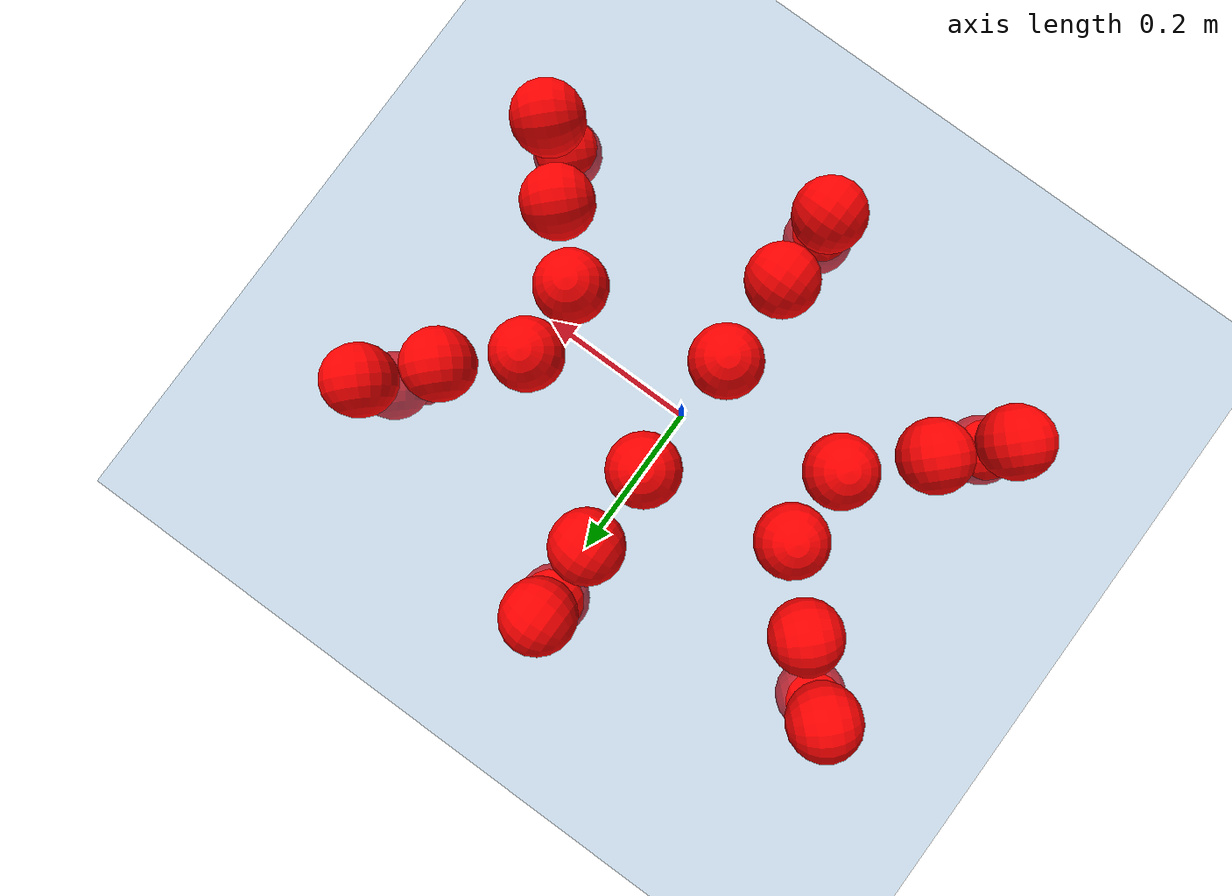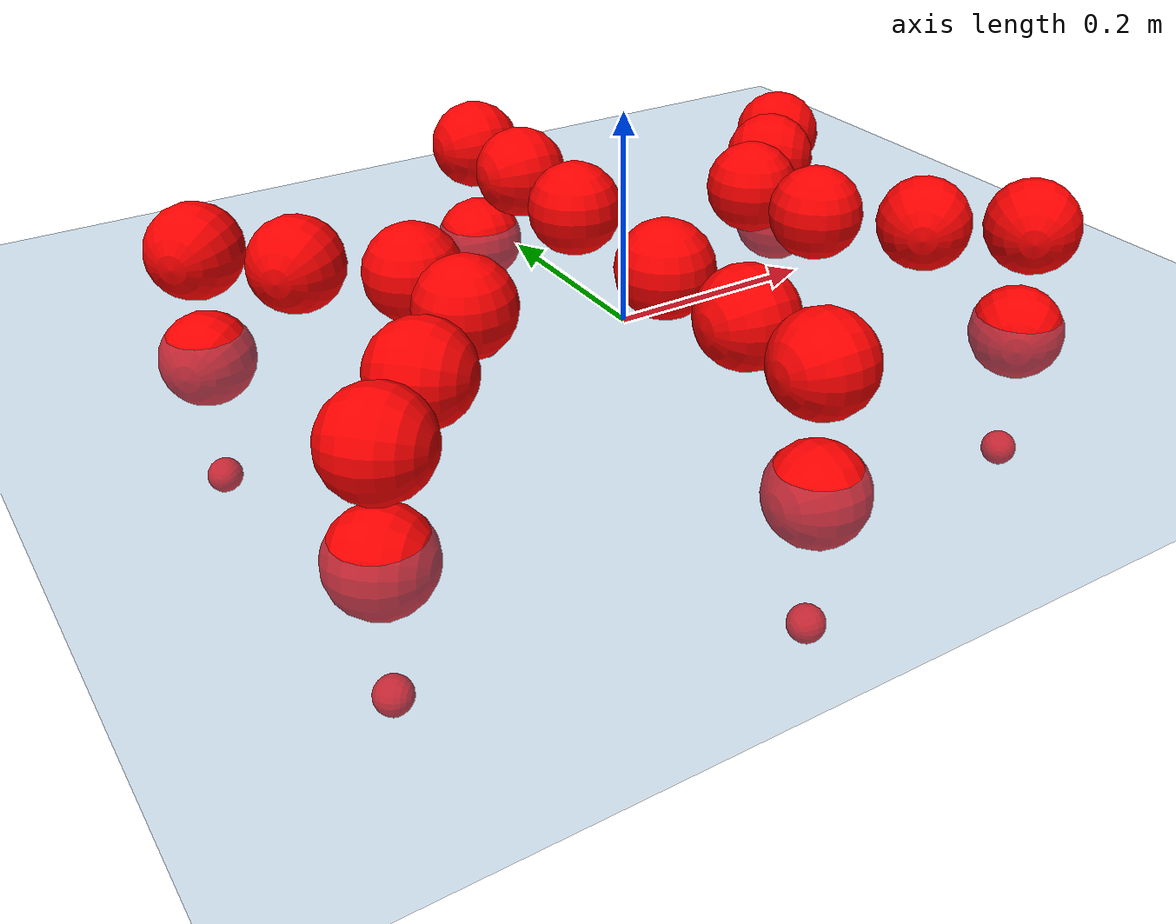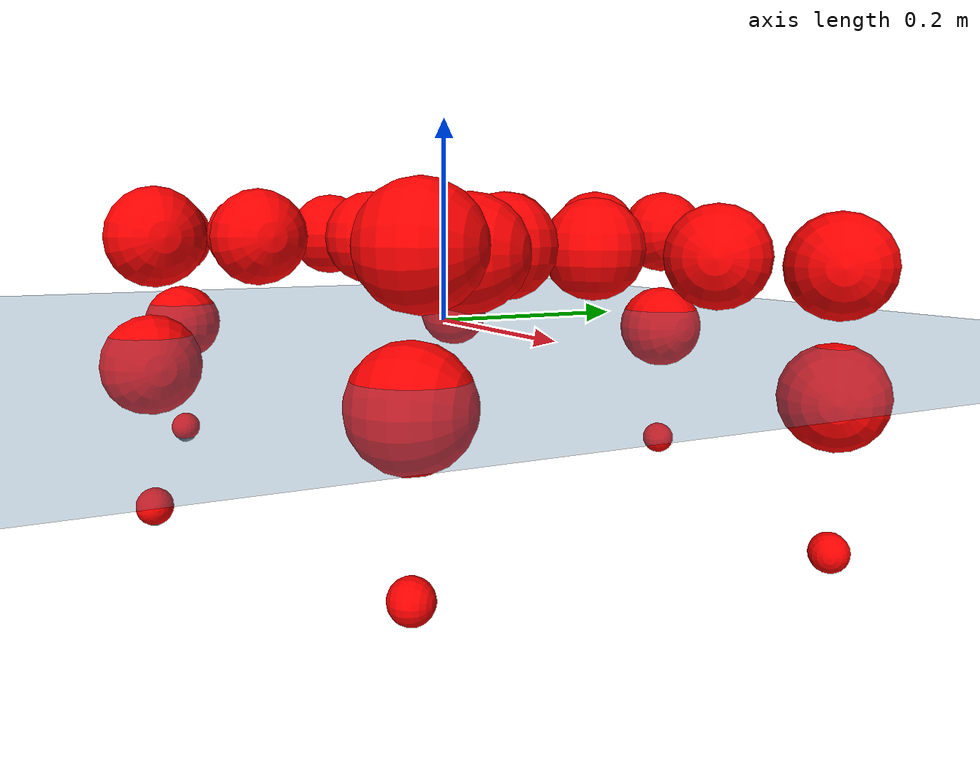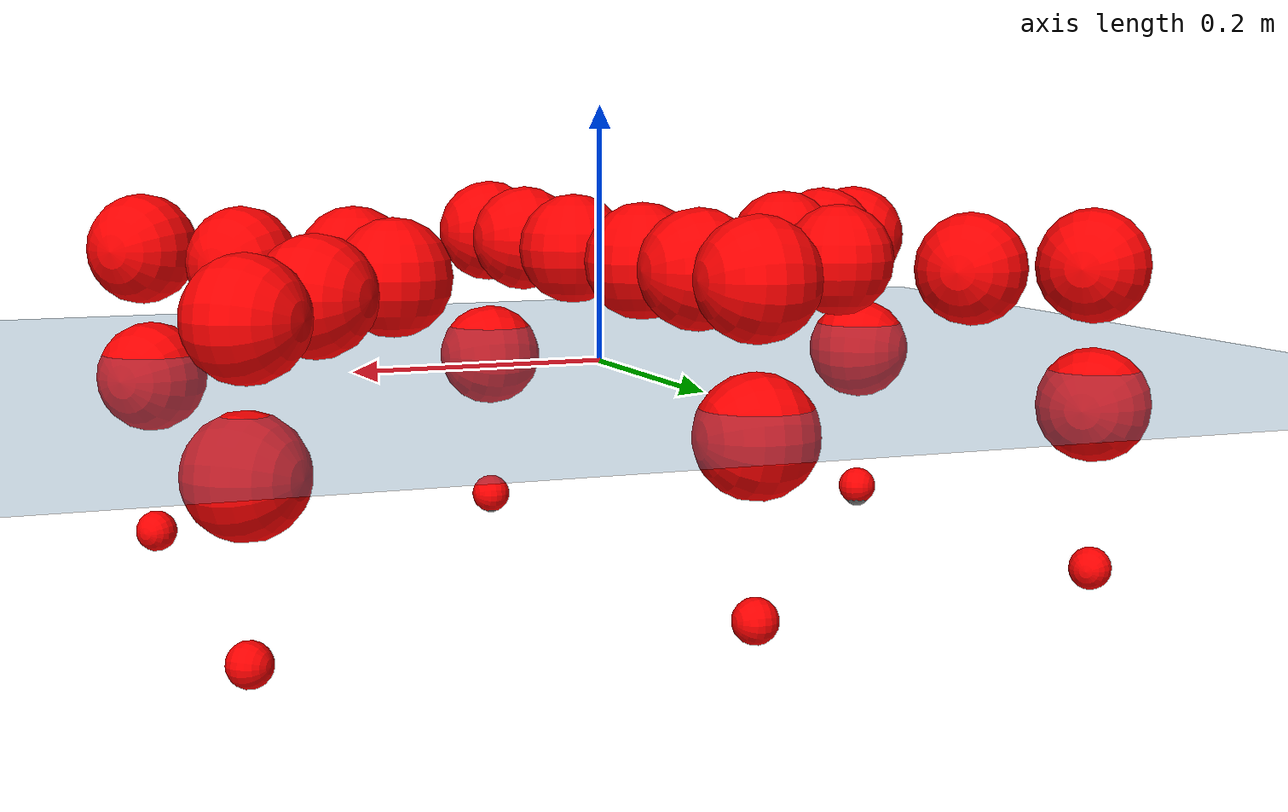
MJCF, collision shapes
<mujoco model="Golem">
  <compiler angle="radian" assetdir="assets" balanceinertia="true" inertiafromgeom="false"/>

  <option timestep="0.005" density="1.2" viscosity="2e-05"/>

  <size nkey="1"/>

  <visual>
    <quality shadowsize="8192"/>
    <map shadowclip="0.5"/>
  </visual>

  <default>
    <default class="/">
      <joint armature="0.01" damping="0.01" frictionloss="0.01"/>
      <geom contype="0" conaffinity="0" group="1" solref="-1000 -80"/>
      <site size="0.01 0.005 0.005" group="5"/>
      <general forcelimited="true" biastype="affine" gainprm="25" biasprm="0 -25 -0.5"/>
      <default class="visual">
        <geom type="mesh" group="2"/>
      </default>
      <default class="collision">
        <geom group="3"/>
      </default>
      <default class="foot">
        <geom size="0.01 0 0" condim="6" group="4" priority="1" solimp="0.015 1 0.01"/>
      </default>
      <default class="reward_collision_sphere">
        <geom group="5" rgba="1 0 0 1"/>
      </default>
    </default>
  </default>

  <asset>
    <texture type="skybox" colorspace="auto" name="//unnamed_texture_0" builtin="gradient" rgb1="0.95 0.95 0.95" rgb2="0.95 0.95 0.95" width="100" height="600"/>
    <texture type="2d" colorspace="auto" name="texplane" builtin="checker" rgb1="0.345 0.575 0.748" rgb2="0.345 0.575 0.748" markrgb="1 1 1" width="512" height="512"/>
    <material name="MatPlane" class="/" texture="texplane" texuniform="true" texrepeat="2 2" specular="0.9"/>
    <mesh name="body" class="/" file="body.stl" scale="0.001 0.001 0.001"/>
    <mesh name="coxa" class="/" file="coxa.stl" scale="0.001 0.001 0.001"/>
    <mesh name="femur" class="/" file="femur.stl" scale="0.001 0.001 0.001"/>
    <mesh name="tibia" class="/" file="tibia.stl" scale="0.001 0.001 0.001"/>
    <mesh name="tarsus" class="/" file="tarsus.stl" scale="0.001 0.001 0.001"/>
  </asset>

  <worldbody>
    <geom name="floor" class="/" size="100 100 0.125" type="plane" group="0" material="MatPlane"/>
    <light name="toplight_shadow" class="/" pos="0 0 5" dir="0.0990148 0.0990148 -0.990148" type="directional" ambient="0.04 0.04 0.04" diffuse="0.55 0.55 0.55" specular="0.12 0.12 0.12"/>
    <light name="toplight_fill" class="/" pos="0 0 5" dir="0.0990148 0.0990148 -0.990148" type="directional" castshadow="false" ambient="0.04 0.04 0.04" diffuse="0.3 0.3 0.3" specular="0.08 0.08 0.08"/>
    <body name="trunk" pos="0.000159445 -0.0021789 0.00231747" quat="0.999998 3.38667e-05 0.00114678 0.00173407">
      <inertial pos="0.000339829 -0.000227479 -0.00416951" quat="0.999988 -0.00239078 0.00132721 -0.00399506" mass="5.42964" diaginertia="0.0232515 0.00505983 0.0331675"/>
      <joint name="//unnamed_joint_0" type="free"/>
      <geom name="//unnamed_geom_1" class="/" pos="0 0 0.0813621" quat="1 0 0 0" type="mesh" rgba="0.9 0.9 0.9 1" mesh="body"/>
      <site name="imu" class="/" pos="0.146967 -0.0225786 0.090561" size="0.0111027"/>
      <camera name="track" class="/" pos="0 -1.73972 0" quat="0.707107 0.707107 0 0" mode="trackcom"/>
      <camera name="ego_camera" class="/" pos="0.154658 0 0.127128" quat="-0.5 -0.5 0.5 0.5"/>
      <body name="coxa_RR" pos="-0.21059 -0.0730257 0.0809757" quat="0.381462 0.00261018 0.00247468 -0.924378">
        <inertial pos="-0.00348106 0.00107333 0.00141297" quat="1 0.000256165 0.000154964 -0.000357879" mass="0.251852" diaginertia="0.0230044 0.00454717 0.0292685"/>
        <joint name="coxa_joint_RR" class="/" pos="0 0 0" axis="0.00126171 -0.000644363 -0.999999" range="-3.13893 3.1154" armature="0.0126019" damping="0.00237269" frictionloss="0.011387"/>
        <geom name="//unnamed_geom_2" class="/" type="mesh" rgba="0.2 0.2 0.2 1" mesh="coxa"/>
        <geom name="//unnamed_geom_3" class="reward_collision_sphere" size="0.0444109" pos="-0.0356904 0 0"/>
        <body name="femur_RR" pos="0.072836 0.00053047 -0.0011469" quat="0.497761 -0.501723 0.499267 0.501238">
          <inertial pos="0.000304257 -0.00702965 -0.00110491" quat="0.999943 -0.0030459 -0.0101089 -0.0014663" mass="0.298913" diaginertia="0.0248343 0.00533042 0.0356126"/>
          <joint name="femur_joint_RR" class="/" pos="0 0 0" axis="-0.00932369 -0.00171642 -0.999955" stiffness="0.00378422" range="-3.12007 3.12007" armature="0.00868705" damping="0.01677" frictionloss="0.0111537"/>
          <geom name="//unnamed_geom_4" class="/" type="mesh" rgba="0.9 0.9 0.9 1" mesh="femur"/>
          <geom name="//unnamed_geom_5" class="reward_collision_sphere" size="0.0444109"/>
          <body name="tibia_RR" pos="0.0024084 -0.094547 0.000757694" quat="2.67342e-05 1 0.000508488 0.000329944">
            <inertial pos="0.000204229 -0.0061659 0.00206253" quat="0.999999 -3.4481e-05 0.00142032 3.7675e-05" mass="0.279469" diaginertia="0.0242278 0.00511832 0.0335934"/>
            <joint name="tibia_joint_RR" class="/" pos="0 0 0" axis="0.00223723 0.0284835 0.999592" stiffness="0.0181672" range="-3.2632 3.17544" armature="0.0119454" damping="0.0313078" frictionloss="0.00669971"/>
            <geom name="//unnamed_geom_6" class="/" type="mesh" rgba="0.2 0.2 0.2 1" mesh="tibia"/>
            <geom name="//unnamed_geom_7" class="reward_collision_sphere" size="0.0444109"/>
            <body name="tarsus_RR" pos="0.103589 -0.00360228 0.00650027" quat="1 -0.000165749 -5.74328e-06 -0.000546076">
              <inertial pos="0.0712756 -0.00183372 -0.00294284" quat="0.499331 0.49809 0.499612 0.502954" mass="0.29315" diaginertia="0.0260954 0.00521869 0.0319239"/>
              <joint name="tarsus_joint_RR" class="/" pos="0 0 0" axis="-0.0110546 -0.00273189 0.999935" stiffness="0.00433219" range="-3.11313 3.09644" armature="0.0106491" damping="0" frictionloss="0.0123578"/>
              <geom name="//unnamed_geom_8" class="/" type="mesh" rgba="0.9 0.9 0.9 1" mesh="tarsus"/>
              <geom name="foot_1" class="foot" size="0.0130327" pos="0.133244 0 0" quat="0 -0.707107 0 0.707107"/>
              <geom name="//unnamed_geom_10" class="reward_collision_sphere" size="0.0444109"/>
              <geom name="//unnamed_geom_11" class="reward_collision_sphere" size="0.0166541" pos="0.12789 0 0"/>
              <site name="foot_1" class="foot" pos="0.133244 0 0" quat="0 -0.707107 0 0.707107" size="0.0111027"/>
            </body>
          </body>
        </body>
      </body>
      <body name="coxa_RM" pos="-0.00751229 -0.109448 0.0810334" quat="0.706977 0.000682671 0.000165792 -0.707236">
        <inertial pos="0.00214921 -0.000591003 0.00466629" quat="0.99934 -0.00807085 -0.000511764 -0.0354104" mass="0.250749" diaginertia="0.0221359 0.00416122 0.0287545"/>
        <joint name="coxa_joint_RM" class="/" pos="0 0 0" axis="0.0334019 0.00226986 -0.999439" stiffness="0.00388432" range="-3.13752 3.15996" armature="0.010277" damping="0.0253235" frictionloss="0.0097469"/>
        <geom name="//unnamed_geom_12" class="/" type="mesh" rgba="0.2 0.2 0.2 1" mesh="coxa"/>
        <geom name="//unnamed_geom_13" class="reward_collision_sphere" size="0.0444109" pos="-0.0356904 0 0"/>
        <body name="femur_RM" pos="0.0768061 0.00206168 0.00153312" quat="0.50071 -0.49919 0.499501 0.500597">
          <inertial pos="0.000590159 -0.00319227 0.00029839" quat="0.99994 0.0013715 -0.00669077 0.0085591" mass="0.268231" diaginertia="0.0251184 0.00487285 0.0333117"/>
          <joint name="femur_joint_RM" class="/" pos="0 0 0" axis="-0.000140147 -0.00302204 -0.999995" stiffness="0.020956" range="-3.22389 3.12314" armature="0.00938332" damping="0.0100019" frictionloss="0.00813136"/>
          <geom name="//unnamed_geom_14" class="/" type="mesh" rgba="0.9 0.9 0.9 1" mesh="femur"/>
          <geom name="//unnamed_geom_15" class="reward_collision_sphere" size="0.0444109"/>
          <body name="tibia_RM" pos="-0.00111151 -0.0932214 0.000254323" quat="-0.00130448 0.999999 0.00023602 -0.00014638">
            <inertial pos="0.00229104 0.000161083 -0.00369946" quat="0.999949 6.57352e-05 -0.0100984 0.000154433" mass="0.253342" diaginertia="0.0234399 0.00498927 0.0335906"/>
            <joint name="tibia_joint_RM" class="/" pos="0 0 0" axis="-0.0295515 -0.00456882 0.999553" range="-3.13797 3.08397" armature="0.0146474" damping="0.0153269" frictionloss="0.00775232"/>
            <geom name="//unnamed_geom_16" class="/" type="mesh" rgba="0.2 0.2 0.2 1" mesh="tibia"/>
            <geom name="//unnamed_geom_17" class="reward_collision_sphere" size="0.0444109"/>
            <body name="tarsus_RM" pos="0.112696 0.00581572 0.00192276" quat="0.999999 0.000603658 -0.00133025 0.000361103">
              <inertial pos="0.0722556 -0.00149514 0.000921737" quat="0.500239 0.496262 0.500654 0.502823" mass="0.241939" diaginertia="0.0215387 0.00462035 0.0309865"/>
              <joint name="tarsus_joint_RM" class="/" pos="0 0 0" axis="-0.000376225 0.00124421 0.999999" range="-3.12861 3.09971" armature="0.0113149" damping="0" frictionloss="0.0120946"/>
              <geom name="//unnamed_geom_18" class="/" type="mesh" rgba="0.9 0.9 0.9 1" mesh="tarsus"/>
              <geom name="foot_2" class="foot" size="0.0119066" pos="0.133244 0 0" quat="0 -0.707107 0 0.707107"/>
              <geom name="//unnamed_geom_20" class="reward_collision_sphere" size="0.0444109"/>
              <geom name="//unnamed_geom_21" class="reward_collision_sphere" size="0.0166541" pos="0.12789 0 0"/>
              <site name="foot_2" class="foot" pos="0.133244 0 0" quat="0 -0.707107 0 0.707107" size="0.0111027"/>
            </body>
          </body>
        </body>
      </body>
      <body name="coxa_RF" pos="0.212265 -0.0649855 0.0774149" quat="0.923885 -3.06215e-06 2.53045e-06 -0.382671">
        <inertial pos="0.00634939 0.00248344 0.00365557" quat="0.999947 0.00151441 -0.000533027 -0.0101567" mass="0.267103" diaginertia="0.0214327 0.00459499 0.0289636"/>
        <joint name="coxa_joint_RF" class="/" pos="0 0 0" axis="-0.0108319 0.00270812 -0.999938" stiffness="0.0223176" range="-3.09517 3.1819" armature="0.0100083" damping="0" frictionloss="0.00803993"/>
        <geom name="//unnamed_geom_22" class="/" type="mesh" rgba="0.2 0.2 0.2 1" mesh="coxa"/>
        <geom name="//unnamed_geom_23" class="reward_collision_sphere" size="0.0444109" pos="-0.0356904 0 0"/>
        <body name="femur_RF" pos="0.06472 0.000452063 -0.00193024" quat="0.498981 -0.499075 0.501556 0.500383">
          <inertial pos="0.00227423 0.000900334 -0.00157256" quat="0.999981 0.00547379 -0.00237517 -0.00126406" mass="0.268891" diaginertia="0.0247281 0.00496463 0.0341102"/>
          <joint name="femur_joint_RF" class="/" pos="0 0 0" axis="0.0022887 -0.00351113 -0.999991" range="-3.14716 3.12529" armature="0.0119127" damping="0.0156286" frictionloss="0.0123566"/>
          <geom name="//unnamed_geom_24" class="/" type="mesh" rgba="0.9 0.9 0.9 1" mesh="femur"/>
          <geom name="//unnamed_geom_25" class="reward_collision_sphere" size="0.0444109"/>
          <body name="tibia_RF" pos="-0.00810453 -0.0963218 -0.00438068" quat="-0.00017263 1 -0.0001308 2.65239e-05">
            <inertial pos="-0.000332963 0.00577554 0.00402616" quat="0.999641 -0.00937413 -0.0246789 -0.0046723" mass="0.299842" diaginertia="0.0259442 0.00533229 0.0332893"/>
            <joint name="tibia_joint_RF" class="/" pos="0 0 0" axis="0.0245331 0.0111431 0.999637" stiffness="0.0413409" range="-3.12478 3.16823" armature="0.0121158" damping="0.0384624" frictionloss="0.0120773"/>
            <geom name="//unnamed_geom_26" class="/" type="mesh" rgba="0.2 0.2 0.2 1" mesh="tibia"/>
            <geom name="//unnamed_geom_27" class="reward_collision_sphere" size="0.0444109"/>
            <body name="tarsus_RF" pos="0.104424 -0.0010563 0.00672376" quat="1 -1.53428e-05 -3.25807e-06 3.98149e-05">
              <inertial pos="0.0734144 0.00213782 -0.00248715" quat="0.502667 0.499798 0.498584 0.498941" mass="0.281929" diaginertia="0.0241002 0.00529192 0.0343378"/>
              <joint name="tarsus_joint_RF" class="/" pos="0 0 0" axis="-0.0323687 0.0174217 0.999324" range="-3.18454 3.10007" armature="0.0107082" damping="0.0102033" frictionloss="0.0103056"/>
              <geom name="//unnamed_geom_28" class="/" type="mesh" rgba="0.9 0.9 0.9 1" mesh="tarsus"/>
              <geom name="foot_3" class="foot" size="0.010884" pos="0.133244 0 0" quat="0 -0.707107 0 0.707107"/>
              <geom name="//unnamed_geom_30" class="reward_collision_sphere" size="0.0444109"/>
              <geom name="//unnamed_geom_31" class="reward_collision_sphere" size="0.0166541" pos="0.12789 0 0"/>
              <site name="foot_3" class="foot" pos="0.133244 0 0" quat="0 -0.707107 0 0.707107" size="0.0111027"/>
            </body>
          </body>
        </body>
      </body>
      <body name="coxa_LR" pos="-0.212067 0.0730197 0.0751556" quat="0.380847 0.00100466 -0.00097932 0.924637">
        <inertial pos="0.000820785 -0.00427689 0.00487347" quat="0.999951 -0.00588791 0.007743 -0.00203479" mass="0.274115" diaginertia="0.024122 0.00527488 0.0340945"/>
        <joint name="coxa_joint_LR" class="/" pos="0 0 0" axis="0.0115849 -0.0134092 -0.999843" range="-3.1324 3.02625" armature="0.0112019" damping="0.0193741" frictionloss="0.00937667"/>
        <geom name="//unnamed_geom_32" class="/" type="mesh" rgba="0.2 0.2 0.2 1" mesh="coxa"/>
        <geom name="//unnamed_geom_33" class="reward_collision_sphere" size="0.0444109" pos="-0.0356904 0 0"/>
        <body name="femur_LR" pos="0.0726844 -0.00192439 -0.00428329" quat="0.499971 -0.499962 0.500083 0.499984">
          <inertial pos="0.00222103 -0.00306183 0.000877253" quat="0.999481 -0.0105555 -0.0273011 0.0134293" mass="0.269212" diaginertia="0.0222894 0.0048058 0.0334501"/>
          <joint name="femur_joint_LR" class="/" pos="0 0 0" axis="0.0103988 -0.0405563 0.999123" range="-3.12724 3.14617" armature="0.00707495" damping="0.00863909" frictionloss="0.0116963"/>
          <geom name="//unnamed_geom_34" class="/" type="mesh" rgba="0.9 0.9 0.9 1" mesh="femur"/>
          <geom name="//unnamed_geom_35" class="reward_collision_sphere" size="0.0444109"/>
          <body name="tibia_LR" pos="-0.00481337 -0.0940856 0.00320015" quat="-0.000118091 1 4.54591e-05 0.000360261">
            <inertial pos="0.000978811 0.000798764 -0.00387871" quat="0.9999 -0.000782358 -0.0137659 0.00321763" mass="0.260943" diaginertia="0.024983 0.00506791 0.033919"/>
            <joint name="tibia_joint_LR" class="/" pos="0 0 0" axis="0.00582174 -0.00619058 -0.999964" stiffness="0.00578193" range="-3.26897 3.07493" armature="0.0135157" damping="0.0148155" frictionloss="0.0111981"/>
            <geom name="//unnamed_geom_36" class="/" type="mesh" rgba="0.2 0.2 0.2 1" mesh="tibia"/>
            <geom name="//unnamed_geom_37" class="reward_collision_sphere" size="0.0444109"/>
            <body name="tarsus_LR" pos="0.107151 0.00151998 -0.00183041" quat="1 2.57012e-05 6.24439e-05 9.83543e-05">
              <inertial pos="0.0708018 0.00509402 0.00216962" quat="0.500661 0.500268 0.499737 0.499334" mass="0.290422" diaginertia="0.0235216 0.0044432 0.0323771"/>
              <joint name="tarsus_joint_LR" class="/" pos="0 0 0" axis="-0.000727769 -0.000847421 -0.999999" range="-3.17897 3.10124" armature="0.0107009" damping="0.0161277" frictionloss="0.0120683"/>
              <geom name="//unnamed_geom_38" class="/" type="mesh" rgba="0.9 0.9 0.9 1" mesh="tarsus"/>
              <geom name="foot_4" class="foot" size="0.0103982" pos="0.133244 0 0" quat="0.707107 0 -0.707107 0"/>
              <geom name="//unnamed_geom_40" class="reward_collision_sphere" size="0.0444109"/>
              <geom name="//unnamed_geom_41" class="reward_collision_sphere" size="0.0166541" pos="0.12789 0 0"/>
              <site name="foot_4" class="foot" pos="0.133244 0 0" quat="0.707107 0 -0.707107 0" size="0.0111027"/>
            </body>
          </body>
        </body>
      </body>
      <body name="coxa_LM" pos="-0.00413268 0.116572 0.0820805" quat="0.706721 7.10032e-05 0.000716275 0.707492">
        <inertial pos="0.00138112 0.00110132 0.00620483" quat="0.999945 0.000799188 0.0101294 -0.00244155" mass="0.277756" diaginertia="0.0241149 0.00504111 0.0340204"/>
        <joint name="coxa_joint_LM" class="/" pos="0 0 0" axis="-0.00133013 -0.00607034 -0.999981" stiffness="0.0130304" range="-3.18283 3.1053" armature="0.0116119" damping="0.0275847" frictionloss="0.0111232"/>
        <geom name="//unnamed_geom_42" class="/" type="mesh" rgba="0.2 0.2 0.2 1" mesh="coxa"/>
        <geom name="//unnamed_geom_43" class="reward_collision_sphere" size="0.0444109" pos="-0.0356904 0 0"/>
        <body name="femur_LM" pos="0.0705178 -0.00145011 0.00175386" quat="0.498901 -0.500362 0.500191 0.500545">
          <inertial pos="0.00324056 -0.00166343 0.00760892" quat="0.999852 0.0120156 0.00676741 -0.0102989" mass="0.282525" diaginertia="0.023888 0.00514809 0.033994"/>
          <joint name="femur_joint_LM" class="/" pos="0 0 0" axis="-0.0040948 -0.00566024 0.999976" range="-3.10731 3.28364" armature="0.0120533" damping="0.034398" frictionloss="0.0136279"/>
          <geom name="//unnamed_geom_44" class="/" type="mesh" rgba="0.9 0.9 0.9 1" mesh="femur"/>
          <geom name="//unnamed_geom_45" class="reward_collision_sphere" size="0.0444109"/>
          <body name="tibia_LM" pos="-0.000622158 -0.0934386 0.00135237" quat="4.32456e-05 1 -0.00011084 -0.000308382">
            <inertial pos="-0.000270573 0.00109512 0.000512873" quat="0.999942 -0.00507497 -0.00835021 -0.0045699" mass="0.29581" diaginertia="0.0261581 0.0054888 0.0366709"/>
            <joint name="tibia_joint_LM" class="/" pos="0 0 0" axis="-0.0177794 -0.0137993 -0.999747" stiffness="0.00783126" range="-3.22476 3.15904" armature="0.00656693" damping="0.0405903" frictionloss="0.00879858"/>
            <geom name="//unnamed_geom_46" class="/" type="mesh" rgba="0.2 0.2 0.2 1" mesh="tibia"/>
            <geom name="//unnamed_geom_47" class="reward_collision_sphere" size="0.0444109"/>
            <body name="tarsus_LM" pos="0.106966 0.000167685 0.000242084" quat="1 -0.000124253 0.000280018 -9.00474e-05">
              <inertial pos="0.0716466 0.00350267 0.000787653" quat="0.500798 0.496275 0.500033 0.502872" mass="0.296873" diaginertia="0.0256947 0.00603372 0.0362014"/>
              <joint name="tarsus_joint_LM" class="/" pos="0 0 0" axis="0.00140818 0.0079319 -0.999968" range="-3.13363 3.15182" armature="0.0101604" damping="0" frictionloss="0.00716948"/>
              <geom name="//unnamed_geom_48" class="/" type="mesh" rgba="0.9 0.9 0.9 1" mesh="tarsus"/>
              <geom name="foot_5" class="foot" size="0.0105008" pos="0.133244 0 0" quat="0.707107 0 -0.707107 0"/>
              <geom name="//unnamed_geom_50" class="reward_collision_sphere" size="0.0444109"/>
              <geom name="//unnamed_geom_51" class="reward_collision_sphere" size="0.0166541" pos="0.12789 0 0"/>
              <site name="foot_5" class="foot" pos="0.133244 0 0" quat="0.707107 0 -0.707107 0" size="0.0111027"/>
            </body>
          </body>
        </body>
      </body>
      <body name="coxa_LF" pos="0.207874 0.0777117 0.0736433" quat="0.923838 -4.12597e-05 2.93287e-05 0.382782">
        <inertial pos="0.00613686 0.00776194 0.00295467" quat="0.999981 0.00119013 0.00353729 -0.00480919" mass="0.28379" diaginertia="0.0249593 0.00572078 0.0332523"/>
        <joint name="coxa_joint_LF" class="/" pos="0 0 0" axis="-0.0212946 -0.0220116 -0.999531" stiffness="0.000664919" range="-3.11063 3.13829" armature="0.0116941" damping="0.0167403" frictionloss="0.0130671"/>
        <geom name="//unnamed_geom_52" class="/" type="mesh" rgba="0.2 0.2 0.2 1" mesh="coxa"/>
        <geom name="//unnamed_geom_53" class="reward_collision_sphere" size="0.0444109" pos="-0.0356904 0 0"/>
        <body name="femur_LF" pos="0.0676687 -0.00544135 -0.00513438" quat="0.500453 -0.501204 0.499419 0.498921">
          <inertial pos="-0.000815755 0.0015951 0.00101224" quat="0.999999 -0.000295714 -0.001661 -9.31111e-05" mass="0.295085" diaginertia="0.0274451 0.00529163 0.0354128"/>
          <joint name="femur_joint_LF" class="/" pos="0 0 0" axis="0.00921787 0.0272487 0.999586" stiffness="0.00741043" range="-3.12814 3.06307" armature="0.0122881" damping="0.0121207" frictionloss="0.0105146"/>
          <geom name="//unnamed_geom_54" class="/" type="mesh" rgba="0.9 0.9 0.9 1" mesh="femur"/>
          <geom name="//unnamed_geom_55" class="reward_collision_sphere" size="0.0444109"/>
          <body name="tibia_LF" pos="0.006819 -0.0950391 0.00268566" quat="0.000174692 1 0.000481916 0.000145747">
            <inertial pos="-0.00192126 -0.00545648 0.00105361" quat="0.999947 0.000167637 0.000916659 0.0102268" mass="0.26111" diaginertia="0.0241344 0.0047849 0.0332287"/>
            <joint name="tibia_joint_LF" class="/" pos="0 0 0" axis="-0.00541581 -0.0107975 -0.999927" stiffness="0.0375094" range="-3.09824 3.21677" armature="0.0107933" damping="0.0298851" frictionloss="0.0118763"/>
            <geom name="//unnamed_geom_56" class="/" type="mesh" rgba="0.2 0.2 0.2 1" mesh="tibia"/>
            <geom name="//unnamed_geom_57" class="reward_collision_sphere" size="0.0444109"/>
            <body name="tarsus_LF" pos="0.105343 -0.00250741 0.0034693" quat="1 -1.20429e-05 5.31763e-05 -2.91541e-05">
              <inertial pos="0.0792906 0.00219552 -0.0015373" quat="0.524498 0.512841 0.472922 0.488099" mass="0.275722" diaginertia="0.0246484 0.00506565 0.0325461"/>
              <joint name="tarsus_joint_LF" class="/" pos="0 0 0" axis="0.0238477 -0.0346805 -0.999114" stiffness="0.00652763" range="-3.15373 3.20006" armature="0.0109878" damping="0.0275992" frictionloss="0.0113499"/>
              <geom name="//unnamed_geom_58" class="/" type="mesh" rgba="0.9 0.9 0.9 1" mesh="tarsus"/>
              <geom name="foot_6" class="foot" size="0.0100959" pos="0.133244 0 0" quat="0.707107 0 -0.707107 0"/>
              <geom name="//unnamed_geom_60" class="reward_collision_sphere" size="0.0444109"/>
              <geom name="//unnamed_geom_61" class="reward_collision_sphere" size="0.0166541" pos="0.12789 0 0"/>
              <site name="foot_6" class="foot" pos="0.133244 0 0" quat="0.707107 0 -0.707107 0" size="0.0111027"/>
            </body>
          </body>
        </body>
      </body>
    </body>
  </worldbody>

  <contact>
    <pair class="/" geom1="floor" geom2="foot_1" name="//unnamed_contact_0"/>
    <pair class="/" geom1="floor" geom2="foot_2" name="//unnamed_contact_1"/>
    <pair class="/" geom1="floor" geom2="foot_3" name="//unnamed_contact_2"/>
    <pair class="/" geom1="floor" geom2="foot_4" name="//unnamed_contact_3"/>
    <pair class="/" geom1="floor" geom2="foot_5" name="//unnamed_contact_4"/>
    <pair class="/" geom1="floor" geom2="foot_6" name="//unnamed_contact_5"/>
  </contact>

  <actuator>
    <general name="coxa_joint_RR" class="/" joint="coxa_joint_RR" forcerange="-8.30266 8.30266" gainprm="26.1953" biasprm="0 -26.1953 -0.559713"/>
    <general name="femur_joint_RR" class="/" joint="femur_joint_RR" forcerange="-8.54429 8.54429" gainprm="26.1953" biasprm="0 -26.1953 -0.559713"/>
    <general name="tibia_joint_RR" class="/" joint="tibia_joint_RR" forcerange="-8.18574 8.18574" gainprm="26.1953" biasprm="0 -26.1953 -0.559713"/>
    <general name="tarsus_joint_RR" class="/" joint="tarsus_joint_RR" forcerange="-6.84308 6.84308" gainprm="26.1953" biasprm="0 -26.1953 -0.559713"/>
    <general name="coxa_joint_RM" class="/" joint="coxa_joint_RM" forcerange="-8.01432 8.01432" gainprm="26.1953" biasprm="0 -26.1953 -0.559713"/>
    <general name="femur_joint_RM" class="/" joint="femur_joint_RM" forcerange="-6.81294 6.81294" gainprm="26.1953" biasprm="0 -26.1953 -0.559713"/>
    <general name="tibia_joint_RM" class="/" joint="tibia_joint_RM" forcerange="-8.48066 8.48066" gainprm="26.1953" biasprm="0 -26.1953 -0.559713"/>
    <general name="tarsus_joint_RM" class="/" joint="tarsus_joint_RM" forcerange="-8.09622 8.09622" gainprm="26.1953" biasprm="0 -26.1953 -0.559713"/>
    <general name="coxa_joint_RF" class="/" joint="coxa_joint_RF" forcerange="-9.35801 9.35801" gainprm="26.1953" biasprm="0 -26.1953 -0.559713"/>
    <general name="femur_joint_RF" class="/" joint="femur_joint_RF" forcerange="-8.7911 8.7911" gainprm="26.1953" biasprm="0 -26.1953 -0.559713"/>
    <general name="tibia_joint_RF" class="/" joint="tibia_joint_RF" forcerange="-8.3216 8.3216" gainprm="26.1953" biasprm="0 -26.1953 -0.559713"/>
    <general name="tarsus_joint_RF" class="/" joint="tarsus_joint_RF" forcerange="-8.77159 8.77159" gainprm="26.1953" biasprm="0 -26.1953 -0.559713"/>
    <general name="coxa_joint_LR" class="/" joint="coxa_joint_LR" forcerange="-8.14757 8.14757" gainprm="26.1953" biasprm="0 -26.1953 -0.559713"/>
    <general name="femur_joint_LR" class="/" joint="femur_joint_LR" forcerange="-8.20938 8.20938" gainprm="26.1953" biasprm="0 -26.1953 -0.559713"/>
    <general name="tibia_joint_LR" class="/" joint="tibia_joint_LR" forcerange="-7.43437 7.43437" gainprm="26.1953" biasprm="0 -26.1953 -0.559713"/>
    <general name="tarsus_joint_LR" class="/" joint="tarsus_joint_LR" forcerange="-8.62357 8.62357" gainprm="26.1953" biasprm="0 -26.1953 -0.559713"/>
    <general name="coxa_joint_LM" class="/" joint="coxa_joint_LM" forcerange="-7.53053 7.53053" gainprm="26.1953" biasprm="0 -26.1953 -0.559713"/>
    <general name="femur_joint_LM" class="/" joint="femur_joint_LM" forcerange="-7.4778 7.4778" gainprm="26.1953" biasprm="0 -26.1953 -0.559713"/>
    <general name="tibia_joint_LM" class="/" joint="tibia_joint_LM" forcerange="-8.17179 8.17179" gainprm="26.1953" biasprm="0 -26.1953 -0.559713"/>
    <general name="tarsus_joint_LM" class="/" joint="tarsus_joint_LM" forcerange="-8.15242 8.15242" gainprm="26.1953" biasprm="0 -26.1953 -0.559713"/>
    <general name="coxa_joint_LF" class="/" joint="coxa_joint_LF" forcerange="-8.42181 8.42181" gainprm="26.1953" biasprm="0 -26.1953 -0.559713"/>
    <general name="femur_joint_LF" class="/" joint="femur_joint_LF" forcerange="-7.89105 7.89105" gainprm="26.1953" biasprm="0 -26.1953 -0.559713"/>
    <general name="tibia_joint_LF" class="/" joint="tibia_joint_LF" forcerange="-8.06043 8.06043" gainprm="26.1953" biasprm="0 -26.1953 -0.559713"/>
    <general name="tarsus_joint_LF" class="/" joint="tarsus_joint_LF" forcerange="-7.90979 7.90979" gainprm="26.1953" biasprm="0 -26.1953 -0.559713"/>
  </actuator>

  <sensor>
    <gyro site="imu" name="imu_angular_velocity"/>
    <velocimeter site="imu" name="imu_linear_velocity"/>
    <framelinvel objtype="site" objname="foot_1" name="foot_1_global_linear_velocity"/>
    <framelinvel objtype="site" objname="foot_2" name="foot_2_global_linear_velocity"/>
    <framelinvel objtype="site" objname="foot_3" name="foot_3_global_linear_velocity"/>
    <framelinvel objtype="site" objname="foot_4" name="foot_4_global_linear_velocity"/>
    <framelinvel objtype="site" objname="foot_5" name="foot_5_global_linear_velocity"/>
    <framelinvel objtype="site" objname="foot_6" name="foot_6_global_linear_velocity"/>
  </sensor>

  <keyframe>
    <key name="home" qpos="0 0 0.1457 1 0 0 0 0 0 0 0 0 0 0 0 0 0 0 0 0 0 0 0 0 0 0 0 0 0 0 0"/>
  </keyframe>
</mujoco>
